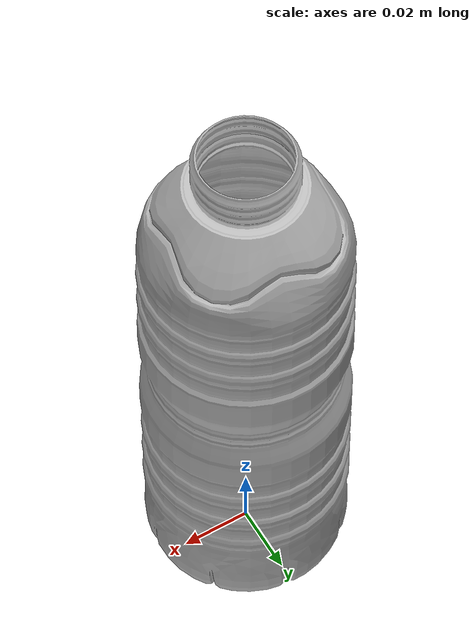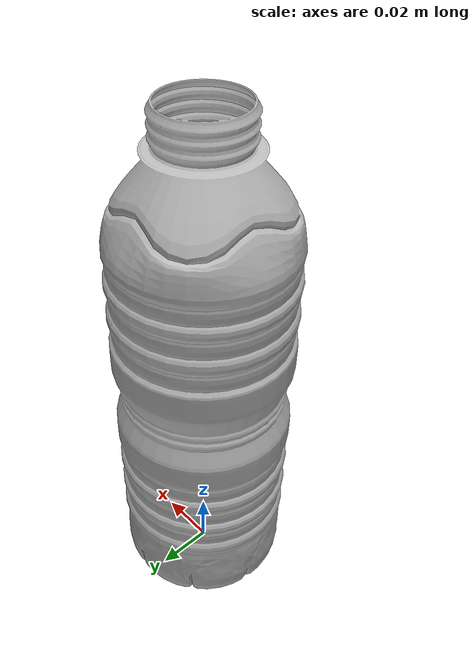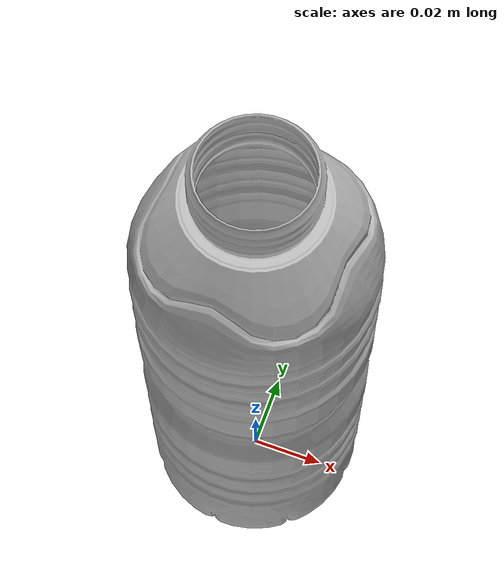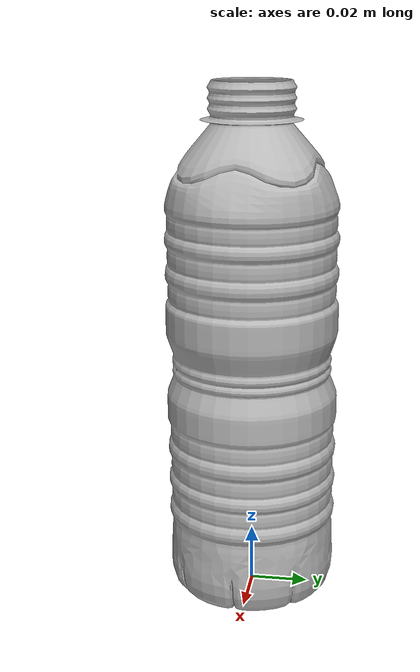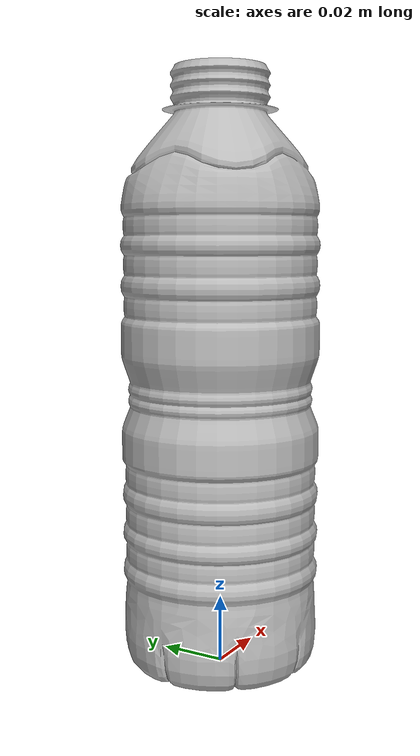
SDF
<?xml version='1.0'?>
<sdf version="1.6">
  <model name="bottle">
    <static>false</static>
    <link name="link">
      <collision name="collision">
        <geometry>
          <mesh>
            <scale>1 1 1</scale>
            <uri>model://bottle/bottle.stl</uri>
          </mesh>
        </geometry>
      </collision>
      <visual name="visual">
        <geometry>
          <mesh>
            <scale>1 1 1</scale>
            <uri>model://bottle/bottle.stl</uri>
          </mesh>
        </geometry>
      </visual>
    </link>
  </model>
</sdf>
